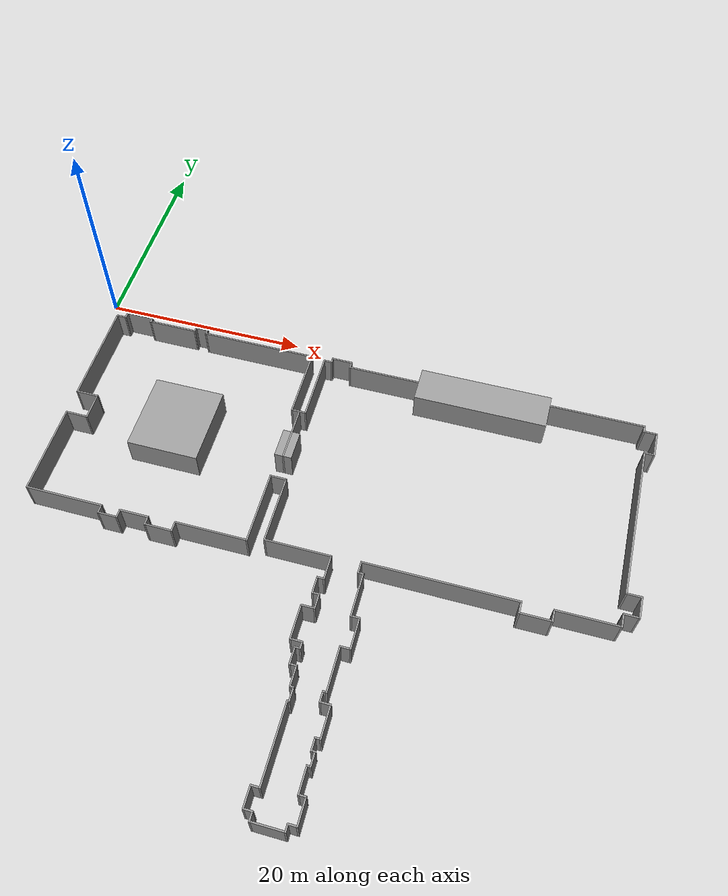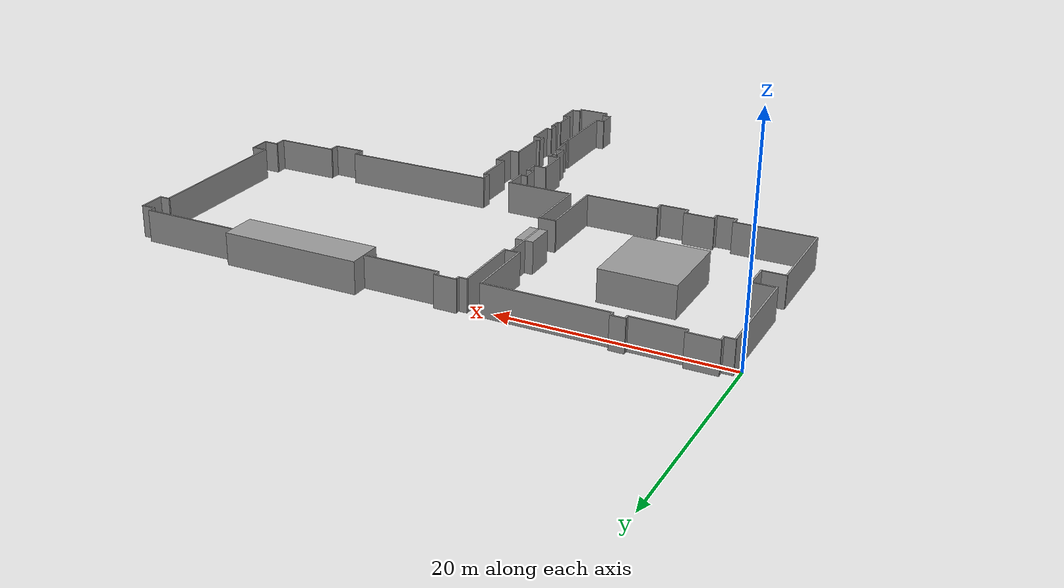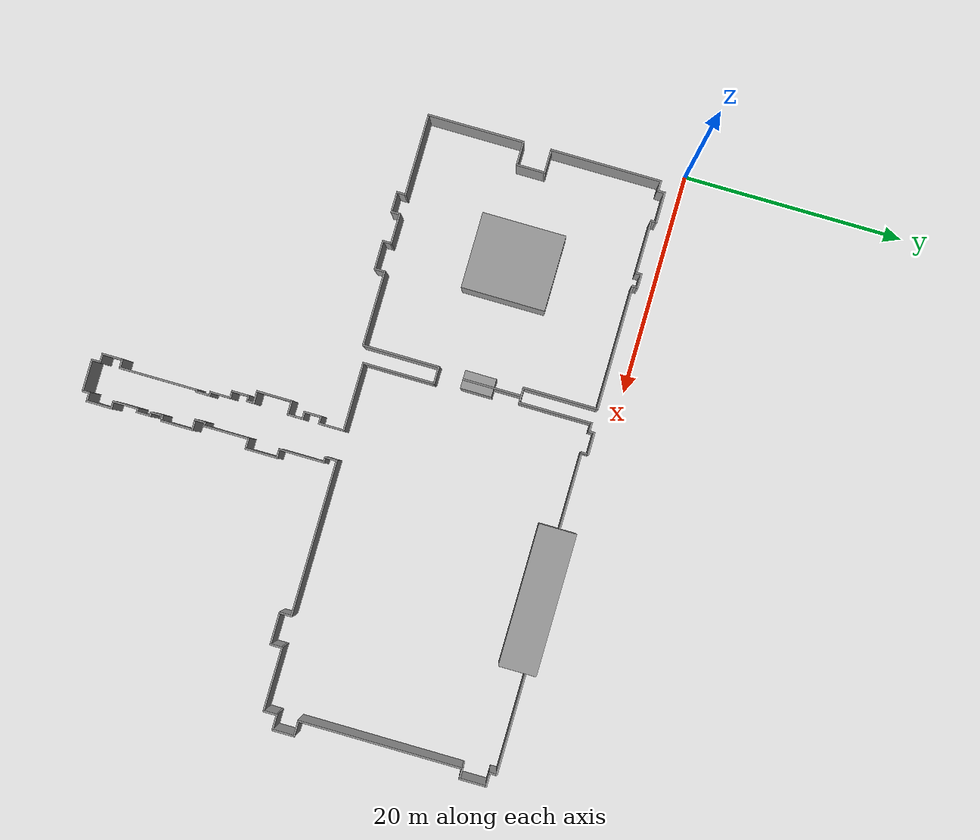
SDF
<sdf version="1.4">
 <model name="AbuDhabi">
  <static>1</static>
  <link name="Wall_0">
   <collision name="Wall_0_Collision">
    <geometry><box><size>12.90000 3.45000 3.00000</size></box></geometry>
    <pose>39.60000 -2.32500 0 0 0 0.00000</pose>
   </collision>
   <visual name="Wall_0_Visual">
    <geometry><box><size>12.90000 3.45000 3.00000</size></box></geometry>
    <material>
     <script><uri>file://media/materials/scripts/gazebo.material</uri><name>Gazebo/Grey</name></script>
    </material>
    <pose>39.60000 -2.32500 0 0 0 0.00000</pose>
   </visual>
  </link>
  <link name="Wall_1">
   <collision name="Wall_1_Collision">
    <geometry><box><size>2.85000 0.15000 3.00000</size></box></geometry>
    <pose>3.52500 -1.42500 0 0 0 0.00000</pose>
   </collision>
   <visual name="Wall_1_Visual">
    <geometry><box><size>2.85000 0.15000 3.00000</size></box></geometry>
    <material>
     <script><uri>file://media/materials/scripts/gazebo.material</uri><name>Gazebo/Grey</name></script>
    </material>
    <pose>3.52500 -1.42500 0 0 0 0.00000</pose>
   </visual>
  </link>
  <link name="Wall_2">
   <collision name="Wall_2_Collision">
    <geometry><box><size>1.35000 0.15000 3.00000</size></box></geometry>
    <pose>10.27500 -1.42500 0 0 0 0.00000</pose>
   </collision>
   <visual name="Wall_2_Visual">
    <geometry><box><size>1.35000 0.15000 3.00000</size></box></geometry>
    <material>
     <script><uri>file://media/materials/scripts/gazebo.material</uri><name>Gazebo/Grey</name></script>
    </material>
    <pose>10.27500 -1.42500 0 0 0 0.00000</pose>
   </visual>
  </link>
  <link name="Wall_3">
   <collision name="Wall_3_Collision">
    <geometry><box><size>0.15000 0.60000 3.00000</size></box></geometry>
    <pose>2.17500 -1.80000 0 0 0 0.00000</pose>
   </collision>
   <visual name="Wall_3_Visual">
    <geometry><box><size>0.15000 0.60000 3.00000</size></box></geometry>
    <material>
     <script><uri>file://media/materials/scripts/gazebo.material</uri><name>Gazebo/Grey</name></script>
    </material>
    <pose>2.17500 -1.80000 0 0 0 0.00000</pose>
   </visual>
  </link>
  <link name="Wall_4">
   <collision name="Wall_4_Collision">
    <geometry><box><size>0.15000 0.45000 3.00000</size></box></geometry>
    <pose>4.87500 -1.72500 0 0 0 0.00000</pose>
   </collision>
   <visual name="Wall_4_Visual">
    <geometry><box><size>0.15000 0.45000 3.00000</size></box></geometry>
    <material>
     <script><uri>file://media/materials/scripts/gazebo.material</uri><name>Gazebo/Grey</name></script>
    </material>
    <pose>4.87500 -1.72500 0 0 0 0.00000</pose>
   </visual>
  </link>
  <link name="Wall_5">
   <collision name="Wall_5_Collision">
    <geometry><box><size>0.15000 0.45000 3.00000</size></box></geometry>
    <pose>9.67500 -1.72500 0 0 0 0.00000</pose>
   </collision>
   <visual name="Wall_5_Visual">
    <geometry><box><size>0.15000 0.45000 3.00000</size></box></geometry>
    <material>
     <script><uri>file://media/materials/scripts/gazebo.material</uri><name>Gazebo/Grey</name></script>
    </material>
    <pose>9.67500 -1.72500 0 0 0 0.00000</pose>
   </visual>
  </link>
  <link name="Wall_6">
   <collision name="Wall_6_Collision">
    <geometry><box><size>0.15000 0.45000 3.00000</size></box></geometry>
    <pose>10.87500 -1.72500 0 0 0 0.00000</pose>
   </collision>
   <visual name="Wall_6_Visual">
    <geometry><box><size>0.15000 0.45000 3.00000</size></box></geometry>
    <material>
     <script><uri>file://media/materials/scripts/gazebo.material</uri><name>Gazebo/Grey</name></script>
    </material>
    <pose>10.87500 -1.72500 0 0 0 0.00000</pose>
   </visual>
  </link>
  <link name="Wall_7">
   <collision name="Wall_7_Collision">
    <geometry><box><size>2.10000 0.15000 3.00000</size></box></geometry>
    <pose>25.20000 -1.57500 0 0 0 0.00000</pose>
   </collision>
   <visual name="Wall_7_Visual">
    <geometry><box><size>2.10000 0.15000 3.00000</size></box></geometry>
    <material>
     <script><uri>file://media/materials/scripts/gazebo.material</uri><name>Gazebo/Grey</name></script>
    </material>
    <pose>25.20000 -1.57500 0 0 0 0.00000</pose>
   </visual>
  </link>
  <link name="Wall_8">
   <collision name="Wall_8_Collision">
    <geometry><box><size>9.15000 0.15000 3.00000</size></box></geometry>
    <pose>50.62500 -1.57500 0 0 0 0.00000</pose>
   </collision>
   <visual name="Wall_8_Visual">
    <geometry><box><size>9.15000 0.15000 3.00000</size></box></geometry>
    <material>
     <script><uri>file://media/materials/scripts/gazebo.material</uri><name>Gazebo/Grey</name></script>
    </material>
    <pose>50.62500 -1.57500 0 0 0 0.00000</pose>
   </visual>
  </link>
  <link name="Wall_9">
   <collision name="Wall_9_Collision">
    <geometry><box><size>0.15000 0.45000 3.00000</size></box></geometry>
    <pose>24.22500 -1.87500 0 0 0 0.00000</pose>
   </collision>
   <visual name="Wall_9_Visual">
    <geometry><box><size>0.15000 0.45000 3.00000</size></box></geometry>
    <material>
     <script><uri>file://media/materials/scripts/gazebo.material</uri><name>Gazebo/Grey</name></script>
    </material>
    <pose>24.22500 -1.87500 0 0 0 0.00000</pose>
   </visual>
  </link>
  <link name="Wall_10">
   <collision name="Wall_10_Collision">
    <geometry><box><size>0.15000 0.60000 3.00000</size></box></geometry>
    <pose>26.17500 -1.95000 0 0 0 0.00000</pose>
   </collision>
   <visual name="Wall_10_Visual">
    <geometry><box><size>0.15000 0.60000 3.00000</size></box></geometry>
    <material>
     <script><uri>file://media/materials/scripts/gazebo.material</uri><name>Gazebo/Grey</name></script>
    </material>
    <pose>26.17500 -1.95000 0 0 0 0.00000</pose>
   </visual>
  </link>
  <link name="Wall_11">
   <collision name="Wall_11_Collision">
    <geometry><box><size>0.15000 0.60000 3.00000</size></box></geometry>
    <pose>55.12500 -1.95000 0 0 0 0.00000</pose>
   </collision>
   <visual name="Wall_11_Visual">
    <geometry><box><size>0.15000 0.60000 3.00000</size></box></geometry>
    <material>
     <script><uri>file://media/materials/scripts/gazebo.material</uri><name>Gazebo/Grey</name></script>
    </material>
    <pose>55.12500 -1.95000 0 0 0 0.00000</pose>
   </visual>
  </link>
  <link name="Wall_12">
   <collision name="Wall_12_Collision">
    <geometry><box><size>4.65000 0.15000 3.00000</size></box></geometry>
    <pose>7.27500 -1.87500 0 0 0 0.00000</pose>
   </collision>
   <visual name="Wall_12_Visual">
    <geometry><box><size>4.65000 0.15000 3.00000</size></box></geometry>
    <material>
     <script><uri>file://media/materials/scripts/gazebo.material</uri><name>Gazebo/Grey</name></script>
    </material>
    <pose>7.27500 -1.87500 0 0 0 0.00000</pose>
   </visual>
  </link>
  <link name="Wall_13">
   <collision name="Wall_13_Collision">
    <geometry><box><size>11.25000 0.15000 3.00000</size></box></geometry>
    <pose>16.57500 -1.87500 0 0 0 0.00000</pose>
   </collision>
   <visual name="Wall_13_Visual">
    <geometry><box><size>11.25000 0.15000 3.00000</size></box></geometry>
    <material>
     <script><uri>file://media/materials/scripts/gazebo.material</uri><name>Gazebo/Grey</name></script>
    </material>
    <pose>16.57500 -1.87500 0 0 0 0.00000</pose>
   </visual>
  </link>
  <link name="Wall_14">
   <collision name="Wall_14_Collision">
    <geometry><box><size>0.90000 0.15000 3.00000</size></box></geometry>
    <pose>1.65000 -2.02500 0 0 0 0.00000</pose>
   </collision>
   <visual name="Wall_14_Visual">
    <geometry><box><size>0.90000 0.15000 3.00000</size></box></geometry>
    <material>
     <script><uri>file://media/materials/scripts/gazebo.material</uri><name>Gazebo/Grey</name></script>
    </material>
    <pose>1.65000 -2.02500 0 0 0 0.00000</pose>
   </visual>
  </link>
  <link name="Wall_15">
   <collision name="Wall_15_Collision">
    <geometry><box><size>0.15000 6.75000 3.00000</size></box></geometry>
    <pose>22.12500 -5.32500 0 0 0 0.00000</pose>
   </collision>
   <visual name="Wall_15_Visual">
    <geometry><box><size>0.15000 6.75000 3.00000</size></box></geometry>
    <material>
     <script><uri>file://media/materials/scripts/gazebo.material</uri><name>Gazebo/Grey</name></script>
    </material>
    <pose>22.12500 -5.32500 0 0 0 0.00000</pose>
   </visual>
  </link>
  <link name="Wall_16">
   <collision name="Wall_16_Collision">
    <geometry><box><size>0.75000 0.15000 3.00000</size></box></geometry>
    <pose>23.77500 -2.02500 0 0 0 0.00000</pose>
   </collision>
   <visual name="Wall_16_Visual">
    <geometry><box><size>0.75000 0.15000 3.00000</size></box></geometry>
    <material>
     <script><uri>file://media/materials/scripts/gazebo.material</uri><name>Gazebo/Grey</name></script>
    </material>
    <pose>23.77500 -2.02500 0 0 0 0.00000</pose>
   </visual>
  </link>
  <link name="Wall_17">
   <collision name="Wall_17_Collision">
    <geometry><box><size>0.15000 10.05000 3.00000</size></box></geometry>
    <pose>1.27500 -7.12500 0 0 0 0.00000</pose>
   </collision>
   <visual name="Wall_17_Visual">
    <geometry><box><size>0.15000 10.05000 3.00000</size></box></geometry>
    <material>
     <script><uri>file://media/materials/scripts/gazebo.material</uri><name>Gazebo/Grey</name></script>
    </material>
    <pose>1.27500 -7.12500 0 0 0 0.00000</pose>
   </visual>
  </link>
  <link name="Wall_18">
   <collision name="Wall_18_Collision">
    <geometry><box><size>0.15000 6.60000 3.00000</size></box></geometry>
    <pose>23.47500 -5.40000 0 0 0 0.00000</pose>
   </collision>
   <visual name="Wall_18_Visual">
    <geometry><box><size>0.15000 6.60000 3.00000</size></box></geometry>
    <material>
     <script><uri>file://media/materials/scripts/gazebo.material</uri><name>Gazebo/Grey</name></script>
    </material>
    <pose>23.47500 -5.40000 0 0 0 0.00000</pose>
   </visual>
  </link>
  <link name="Wall_19">
   <collision name="Wall_19_Collision">
    <geometry><box><size>6.90000 0.15000 3.00000</size></box></geometry>
    <pose>29.70000 -2.17500 0 0 0 0.00000</pose>
   </collision>
   <visual name="Wall_19_Visual">
    <geometry><box><size>6.90000 0.15000 3.00000</size></box></geometry>
    <material>
     <script><uri>file://media/materials/scripts/gazebo.material</uri><name>Gazebo/Grey</name></script>
    </material>
    <pose>29.70000 -2.17500 0 0 0 0.00000</pose>
   </visual>
  </link>
  <link name="Wall_20">
   <collision name="Wall_20_Collision">
    <geometry><box><size>1.20000 0.15000 3.00000</size></box></geometry>
    <pose>55.80000 -2.17500 0 0 0 0.00000</pose>
   </collision>
   <visual name="Wall_20_Visual">
    <geometry><box><size>1.20000 0.15000 3.00000</size></box></geometry>
    <material>
     <script><uri>file://media/materials/scripts/gazebo.material</uri><name>Gazebo/Grey</name></script>
    </material>
    <pose>55.80000 -2.17500 0 0 0 0.00000</pose>
   </visual>
  </link>
  <link name="Wall_21">
   <collision name="Wall_21_Collision">
    <geometry><box><size>0.15000 2.40000 3.00000</size></box></geometry>
    <pose>56.32500 -3.45000 0 0 0 0.00000</pose>
   </collision>
   <visual name="Wall_21_Visual">
    <geometry><box><size>0.15000 2.40000 3.00000</size></box></geometry>
    <material>
     <script><uri>file://media/materials/scripts/gazebo.material</uri><name>Gazebo/Grey</name></script>
    </material>
    <pose>56.32500 -3.45000 0 0 0 0.00000</pose>
   </visual>
  </link>
  <link name="Wall_22">
   <collision name="Wall_22_Collision">
    <geometry><box><size>0.90000 0.15000 3.00000</size></box></geometry>
    <pose>55.80000 -4.57500 0 0 0 0.00000</pose>
   </collision>
   <visual name="Wall_22_Visual">
    <geometry><box><size>0.90000 0.15000 3.00000</size></box></geometry>
    <material>
     <script><uri>file://media/materials/scripts/gazebo.material</uri><name>Gazebo/Grey</name></script>
    </material>
    <pose>55.80000 -4.57500 0 0 0 0.00000</pose>
   </visual>
  </link>
  <link name="Wall_23">
   <collision name="Wall_23_Collision">
    <geometry><box><size>0.15000 14.85000 3.00000</size></box></geometry>
    <pose>55.42500 -12.07500 0 0 0 0.00000</pose>
   </collision>
   <visual name="Wall_23_Visual">
    <geometry><box><size>0.15000 14.85000 3.00000</size></box></geometry>
    <material>
     <script><uri>file://media/materials/scripts/gazebo.material</uri><name>Gazebo/Grey</name></script>
    </material>
    <pose>55.42500 -12.07500 0 0 0 0.00000</pose>
   </visual>
  </link>
  <link name="Wall_24">
   <collision name="Wall_24_Collision">
    <geometry><box><size>1.20000 0.15000 3.00000</size></box></geometry>
    <pose>22.80000 -8.62500 0 0 0 0.00000</pose>
   </collision>
   <visual name="Wall_24_Visual">
    <geometry><box><size>1.20000 0.15000 3.00000</size></box></geometry>
    <material>
     <script><uri>file://media/materials/scripts/gazebo.material</uri><name>Gazebo/Grey</name></script>
    </material>
    <pose>22.80000 -8.62500 0 0 0 0.00000</pose>
   </visual>
  </link>
  <link name="Wall_25">
   <collision name="Wall_25_Collision">
    <geometry><box><size>6.90000 7.65000 3.00000</size></box></geometry>
    <pose>11.70000 -12.52500 0 0 0 0.00000</pose>
   </collision>
   <visual name="Wall_25_Visual">
    <geometry><box><size>6.90000 7.65000 3.00000</size></box></geometry>
    <material>
     <script><uri>file://media/materials/scripts/gazebo.material</uri><name>Gazebo/Grey</name></script>
    </material>
    <pose>11.70000 -12.52500 0 0 0 0.00000</pose>
   </visual>
  </link>
  <link name="Wall_26">
   <collision name="Wall_26_Collision">
    <geometry><box><size>0.15000 5.25000 3.00000</size></box></geometry>
    <pose>22.87500 -11.32500 0 0 0 0.00000</pose>
   </collision>
   <visual name="Wall_26_Visual">
    <geometry><box><size>0.15000 5.25000 3.00000</size></box></geometry>
    <material>
     <script><uri>file://media/materials/scripts/gazebo.material</uri><name>Gazebo/Grey</name></script>
    </material>
    <pose>22.87500 -11.32500 0 0 0 0.00000</pose>
   </visual>
  </link>
  <link name="Wall_27">
   <collision name="Wall_27_Collision">
    <geometry><box><size>0.75000 2.85000 3.00000</size></box></geometry>
    <pose>22.42500 -12.52500 0 0 0 0.00000</pose>
   </collision>
   <visual name="Wall_27_Visual">
    <geometry><box><size>0.75000 2.85000 3.00000</size></box></geometry>
    <material>
     <script><uri>file://media/materials/scripts/gazebo.material</uri><name>Gazebo/Grey</name></script>
    </material>
    <pose>22.42500 -12.52500 0 0 0 0.00000</pose>
   </visual>
  </link>
  <link name="Wall_28">
   <collision name="Wall_28_Collision">
    <geometry><box><size>0.75000 2.85000 3.00000</size></box></geometry>
    <pose>23.32500 -12.52500 0 0 0 0.00000</pose>
   </collision>
   <visual name="Wall_28_Visual">
    <geometry><box><size>0.75000 2.85000 3.00000</size></box></geometry>
    <material>
     <script><uri>file://media/materials/scripts/gazebo.material</uri><name>Gazebo/Grey</name></script>
    </material>
    <pose>23.32500 -12.52500 0 0 0 0.00000</pose>
   </visual>
  </link>
  <link name="Wall_29">
   <collision name="Wall_29_Collision">
    <geometry><box><size>2.10000 0.15000 3.00000</size></box></geometry>
    <pose>2.40000 -12.07500 0 0 0 0.00000</pose>
   </collision>
   <visual name="Wall_29_Visual">
    <geometry><box><size>2.10000 0.15000 3.00000</size></box></geometry>
    <material>
     <script><uri>file://media/materials/scripts/gazebo.material</uri><name>Gazebo/Grey</name></script>
    </material>
    <pose>2.40000 -12.07500 0 0 0 0.00000</pose>
   </visual>
  </link>
  <link name="Wall_30">
   <collision name="Wall_30_Collision">
    <geometry><box><size>0.15000 2.55000 3.00000</size></box></geometry>
    <pose>3.37500 -13.42500 0 0 0 0.00000</pose>
   </collision>
   <visual name="Wall_30_Visual">
    <geometry><box><size>0.15000 2.55000 3.00000</size></box></geometry>
    <material>
     <script><uri>file://media/materials/scripts/gazebo.material</uri><name>Gazebo/Grey</name></script>
    </material>
    <pose>3.37500 -13.42500 0 0 0 0.00000</pose>
   </visual>
  </link>
  <link name="Wall_31">
   <collision name="Wall_31_Collision">
    <geometry><box><size>2.10000 0.15000 3.00000</size></box></geometry>
    <pose>2.25000 -14.62500 0 0 0 0.00000</pose>
   </collision>
   <visual name="Wall_31_Visual">
    <geometry><box><size>2.10000 0.15000 3.00000</size></box></geometry>
    <material>
     <script><uri>file://media/materials/scripts/gazebo.material</uri><name>Gazebo/Grey</name></script>
    </material>
    <pose>2.25000 -14.62500 0 0 0 0.00000</pose>
   </visual>
  </link>
  <link name="Wall_32">
   <collision name="Wall_32_Collision">
    <geometry><box><size>0.15000 8.70000 3.00000</size></box></geometry>
    <pose>1.27500 -19.05000 0 0 0 0.00000</pose>
   </collision>
   <visual name="Wall_32_Visual">
    <geometry><box><size>0.15000 8.70000 3.00000</size></box></geometry>
    <material>
     <script><uri>file://media/materials/scripts/gazebo.material</uri><name>Gazebo/Grey</name></script>
    </material>
    <pose>1.27500 -19.05000 0 0 0 0.00000</pose>
   </visual>
  </link>
  <link name="Wall_33">
   <collision name="Wall_33_Collision">
    <geometry><box><size>1.65000 0.15000 3.00000</size></box></geometry>
    <pose>23.17500 -16.27500 0 0 0 0.00000</pose>
   </collision>
   <visual name="Wall_33_Visual">
    <geometry><box><size>1.65000 0.15000 3.00000</size></box></geometry>
    <material>
     <script><uri>file://media/materials/scripts/gazebo.material</uri><name>Gazebo/Grey</name></script>
    </material>
    <pose>23.17500 -16.27500 0 0 0 0.00000</pose>
   </visual>
  </link>
  <link name="Wall_34">
   <collision name="Wall_34_Collision">
    <geometry><box><size>0.15000 6.90000 3.00000</size></box></geometry>
    <pose>22.42500 -19.80000 0 0 0 0.00000</pose>
   </collision>
   <visual name="Wall_34_Visual">
    <geometry><box><size>0.15000 6.90000 3.00000</size></box></geometry>
    <material>
     <script><uri>file://media/materials/scripts/gazebo.material</uri><name>Gazebo/Grey</name></script>
    </material>
    <pose>22.42500 -19.80000 0 0 0 0.00000</pose>
   </visual>
  </link>
  <link name="Wall_35">
   <collision name="Wall_35_Collision">
    <geometry><box><size>0.15000 6.45000 3.00000</size></box></geometry>
    <pose>23.92500 -19.57500 0 0 0 0.00000</pose>
   </collision>
   <visual name="Wall_35_Visual">
    <geometry><box><size>0.15000 6.45000 3.00000</size></box></geometry>
    <material>
     <script><uri>file://media/materials/scripts/gazebo.material</uri><name>Gazebo/Grey</name></script>
    </material>
    <pose>23.92500 -19.57500 0 0 0 0.00000</pose>
   </visual>
  </link>
  <link name="Wall_36">
   <collision name="Wall_36_Collision">
    <geometry><box><size>1.35000 0.15000 3.00000</size></box></geometry>
    <pose>56.17500 -19.42500 0 0 0 0.00000</pose>
   </collision>
   <visual name="Wall_36_Visual">
    <geometry><box><size>1.35000 0.15000 3.00000</size></box></geometry>
    <material>
     <script><uri>file://media/materials/scripts/gazebo.material</uri><name>Gazebo/Grey</name></script>
    </material>
    <pose>56.17500 -19.42500 0 0 0 0.00000</pose>
   </visual>
  </link>
  <link name="Wall_37">
   <collision name="Wall_37_Collision">
    <geometry><box><size>0.15000 1.95000 3.00000</size></box></geometry>
    <pose>56.77500 -20.47500 0 0 0 0.00000</pose>
   </collision>
   <visual name="Wall_37_Visual">
    <geometry><box><size>0.15000 1.95000 3.00000</size></box></geometry>
    <material>
     <script><uri>file://media/materials/scripts/gazebo.material</uri><name>Gazebo/Grey</name></script>
    </material>
    <pose>56.77500 -20.47500 0 0 0 0.00000</pose>
   </visual>
  </link>
  <link name="Wall_38">
   <collision name="Wall_38_Collision">
    <geometry><box><size>1.35000 0.15000 3.00000</size></box></geometry>
    <pose>56.02500 -21.37500 0 0 0 0.00000</pose>
   </collision>
   <visual name="Wall_38_Visual">
    <geometry><box><size>1.35000 0.15000 3.00000</size></box></geometry>
    <material>
     <script><uri>file://media/materials/scripts/gazebo.material</uri><name>Gazebo/Grey</name></script>
    </material>
    <pose>56.02500 -21.37500 0 0 0 0.00000</pose>
   </visual>
  </link>
  <link name="Wall_39">
   <collision name="Wall_39_Collision">
    <geometry><box><size>0.15000 1.20000 3.00000</size></box></geometry>
    <pose>55.42500 -22.05000 0 0 0 0.00000</pose>
   </collision>
   <visual name="Wall_39_Visual">
    <geometry><box><size>0.15000 1.20000 3.00000</size></box></geometry>
    <material>
     <script><uri>file://media/materials/scripts/gazebo.material</uri><name>Gazebo/Grey</name></script>
    </material>
    <pose>55.42500 -22.05000 0 0 0 0.00000</pose>
   </visual>
  </link>
  <link name="Wall_40">
   <collision name="Wall_40_Collision">
    <geometry><box><size>14.25000 0.15000 3.00000</size></box></geometry>
    <pose>39.82500 -22.57500 0 0 0 0.00000</pose>
   </collision>
   <visual name="Wall_40_Visual">
    <geometry><box><size>14.25000 0.15000 3.00000</size></box></geometry>
    <material>
     <script><uri>file://media/materials/scripts/gazebo.material</uri><name>Gazebo/Grey</name></script>
    </material>
    <pose>39.82500 -22.57500 0 0 0 0.00000</pose>
   </visual>
  </link>
  <link name="Wall_41">
   <collision name="Wall_41_Collision">
    <geometry><box><size>5.70000 0.15000 3.00000</size></box></geometry>
    <pose>52.50000 -22.57500 0 0 0 0.00000</pose>
   </collision>
   <visual name="Wall_41_Visual">
    <geometry><box><size>5.70000 0.15000 3.00000</size></box></geometry>
    <material>
     <script><uri>file://media/materials/scripts/gazebo.material</uri><name>Gazebo/Grey</name></script>
    </material>
    <pose>52.50000 -22.57500 0 0 0 0.00000</pose>
   </visual>
  </link>
  <link name="Wall_42">
   <collision name="Wall_42_Collision">
    <geometry><box><size>6.15000 0.15000 3.00000</size></box></geometry>
    <pose>27.07500 -22.72500 0 0 0 0.00000</pose>
   </collision>
   <visual name="Wall_42_Visual">
    <geometry><box><size>6.15000 0.15000 3.00000</size></box></geometry>
    <material>
     <script><uri>file://media/materials/scripts/gazebo.material</uri><name>Gazebo/Grey</name></script>
    </material>
    <pose>27.07500 -22.72500 0 0 0 0.00000</pose>
   </visual>
  </link>
  <link name="Wall_43">
   <collision name="Wall_43_Collision">
    <geometry><box><size>0.15000 1.05000 3.00000</size></box></geometry>
    <pose>32.77500 -23.17500 0 0 0 0.00000</pose>
   </collision>
   <visual name="Wall_43_Visual">
    <geometry><box><size>0.15000 1.05000 3.00000</size></box></geometry>
    <material>
     <script><uri>file://media/materials/scripts/gazebo.material</uri><name>Gazebo/Grey</name></script>
    </material>
    <pose>32.77500 -23.17500 0 0 0 0.00000</pose>
   </visual>
  </link>
  <link name="Wall_44">
   <collision name="Wall_44_Collision">
    <geometry><box><size>0.15000 1.05000 3.00000</size></box></geometry>
    <pose>46.87500 -23.17500 0 0 0 0.00000</pose>
   </collision>
   <visual name="Wall_44_Visual">
    <geometry><box><size>0.15000 1.05000 3.00000</size></box></geometry>
    <material>
     <script><uri>file://media/materials/scripts/gazebo.material</uri><name>Gazebo/Grey</name></script>
    </material>
    <pose>46.87500 -23.17500 0 0 0 0.00000</pose>
   </visual>
  </link>
  <link name="Wall_45">
   <collision name="Wall_45_Collision">
    <geometry><box><size>0.15000 1.05000 3.00000</size></box></geometry>
    <pose>49.72500 -23.17500 0 0 0 0.00000</pose>
   </collision>
   <visual name="Wall_45_Visual">
    <geometry><box><size>0.15000 1.05000 3.00000</size></box></geometry>
    <material>
     <script><uri>file://media/materials/scripts/gazebo.material</uri><name>Gazebo/Grey</name></script>
    </material>
    <pose>49.72500 -23.17500 0 0 0 0.00000</pose>
   </visual>
  </link>
  <link name="Wall_46">
   <collision name="Wall_46_Collision">
    <geometry><box><size>0.15000 2.25000 3.00000</size></box></geometry>
    <pose>30.07500 -23.92500 0 0 0 0.00000</pose>
   </collision>
   <visual name="Wall_46_Visual">
    <geometry><box><size>0.15000 2.25000 3.00000</size></box></geometry>
    <material>
     <script><uri>file://media/materials/scripts/gazebo.material</uri><name>Gazebo/Grey</name></script>
    </material>
    <pose>30.07500 -23.92500 0 0 0 0.00000</pose>
   </visual>
  </link>
  <link name="Wall_47">
   <collision name="Wall_47_Collision">
    <geometry><box><size>6.75000 0.15000 3.00000</size></box></geometry>
    <pose>18.97500 -23.17500 0 0 0 0.00000</pose>
   </collision>
   <visual name="Wall_47_Visual">
    <geometry><box><size>6.75000 0.15000 3.00000</size></box></geometry>
    <material>
     <script><uri>file://media/materials/scripts/gazebo.material</uri><name>Gazebo/Grey</name></script>
    </material>
    <pose>18.97500 -23.17500 0 0 0 0.00000</pose>
   </visual>
  </link>
  <link name="Wall_48">
   <collision name="Wall_48_Collision">
    <geometry><box><size>7.35000 0.15000 3.00000</size></box></geometry>
    <pose>5.02500 -23.32500 0 0 0 0.00000</pose>
   </collision>
   <visual name="Wall_48_Visual">
    <geometry><box><size>7.35000 0.15000 3.00000</size></box></geometry>
    <material>
     <script><uri>file://media/materials/scripts/gazebo.material</uri><name>Gazebo/Grey</name></script>
    </material>
    <pose>5.02500 -23.32500 0 0 0 0.00000</pose>
   </visual>
  </link>
  <link name="Wall_49">
   <collision name="Wall_49_Collision">
    <geometry><box><size>2.85000 0.15000 3.00000</size></box></geometry>
    <pose>11.77500 -23.32500 0 0 0 0.00000</pose>
   </collision>
   <visual name="Wall_49_Visual">
    <geometry><box><size>2.85000 0.15000 3.00000</size></box></geometry>
    <material>
     <script><uri>file://media/materials/scripts/gazebo.material</uri><name>Gazebo/Grey</name></script>
    </material>
    <pose>11.77500 -23.32500 0 0 0 0.00000</pose>
   </visual>
  </link>
  <link name="Wall_50">
   <collision name="Wall_50_Collision">
    <geometry><box><size>0.15000 0.90000 3.00000</size></box></geometry>
    <pose>15.67500 -23.70000 0 0 0 0.00000</pose>
   </collision>
   <visual name="Wall_50_Visual">
    <geometry><box><size>0.15000 0.90000 3.00000</size></box></geometry>
    <material>
     <script><uri>file://media/materials/scripts/gazebo.material</uri><name>Gazebo/Grey</name></script>
    </material>
    <pose>15.67500 -23.70000 0 0 0 0.00000</pose>
   </visual>
  </link>
  <link name="Wall_51">
   <collision name="Wall_51_Collision">
    <geometry><box><size>0.15000 0.75000 3.00000</size></box></geometry>
    <pose>8.62500 -23.77500 0 0 0 0.00000</pose>
   </collision>
   <visual name="Wall_51_Visual">
    <geometry><box><size>0.15000 0.75000 3.00000</size></box></geometry>
    <material>
     <script><uri>file://media/materials/scripts/gazebo.material</uri><name>Gazebo/Grey</name></script>
    </material>
    <pose>8.62500 -23.77500 0 0 0 0.00000</pose>
   </visual>
  </link>
  <link name="Wall_52">
   <collision name="Wall_52_Collision">
    <geometry><box><size>0.15000 0.75000 3.00000</size></box></geometry>
    <pose>10.42500 -23.77500 0 0 0 0.00000</pose>
   </collision>
   <visual name="Wall_52_Visual">
    <geometry><box><size>0.15000 0.75000 3.00000</size></box></geometry>
    <material>
     <script><uri>file://media/materials/scripts/gazebo.material</uri><name>Gazebo/Grey</name></script>
    </material>
    <pose>10.42500 -23.77500 0 0 0 0.00000</pose>
   </visual>
  </link>
  <link name="Wall_53">
   <collision name="Wall_53_Collision">
    <geometry><box><size>0.15000 0.75000 3.00000</size></box></geometry>
    <pose>13.12500 -23.77500 0 0 0 0.00000</pose>
   </collision>
   <visual name="Wall_53_Visual">
    <geometry><box><size>0.15000 0.75000 3.00000</size></box></geometry>
    <material>
     <script><uri>file://media/materials/scripts/gazebo.material</uri><name>Gazebo/Grey</name></script>
    </material>
    <pose>13.12500 -23.77500 0 0 0 0.00000</pose>
   </visual>
  </link>
  <link name="Wall_54">
   <collision name="Wall_54_Collision">
    <geometry><box><size>0.45000 0.15000 3.00000</size></box></geometry>
    <pose>33.07500 -23.62500 0 0 0 0.00000</pose>
   </collision>
   <visual name="Wall_54_Visual">
    <geometry><box><size>0.45000 0.15000 3.00000</size></box></geometry>
    <material>
     <script><uri>file://media/materials/scripts/gazebo.material</uri><name>Gazebo/Grey</name></script>
    </material>
    <pose>33.07500 -23.62500 0 0 0 0.00000</pose>
   </visual>
  </link>
  <link name="Wall_55">
   <collision name="Wall_55_Collision">
    <geometry><box><size>2.70000 0.15000 3.00000</size></box></geometry>
    <pose>48.30000 -23.62500 0 0 0 0.00000</pose>
   </collision>
   <visual name="Wall_55_Visual">
    <geometry><box><size>2.70000 0.15000 3.00000</size></box></geometry>
    <material>
     <script><uri>file://media/materials/scripts/gazebo.material</uri><name>Gazebo/Grey</name></script>
    </material>
    <pose>48.30000 -23.62500 0 0 0 0.00000</pose>
   </visual>
  </link>
  <link name="Wall_56">
   <collision name="Wall_56_Collision">
    <geometry><box><size>0.15000 4.05000 3.00000</size></box></geometry>
    <pose>33.22500 -25.72500 0 0 0 0.00000</pose>
   </collision>
   <visual name="Wall_56_Visual">
    <geometry><box><size>0.15000 4.05000 3.00000</size></box></geometry>
    <material>
     <script><uri>file://media/materials/scripts/gazebo.material</uri><name>Gazebo/Grey</name></script>
    </material>
    <pose>33.22500 -25.72500 0 0 0 0.00000</pose>
   </visual>
  </link>
  <link name="Wall_57">
   <collision name="Wall_57_Collision">
    <geometry><box><size>1.65000 0.15000 3.00000</size></box></geometry>
    <pose>9.52500 -24.07500 0 0 0 0.00000</pose>
   </collision>
   <visual name="Wall_57_Visual">
    <geometry><box><size>1.65000 0.15000 3.00000</size></box></geometry>
    <material>
     <script><uri>file://media/materials/scripts/gazebo.material</uri><name>Gazebo/Grey</name></script>
    </material>
    <pose>9.52500 -24.07500 0 0 0 0.00000</pose>
   </visual>
  </link>
  <link name="Wall_58">
   <collision name="Wall_58_Collision">
    <geometry><box><size>2.40000 0.15000 3.00000</size></box></geometry>
    <pose>14.40000 -24.07500 0 0 0 0.00000</pose>
   </collision>
   <visual name="Wall_58_Visual">
    <geometry><box><size>2.40000 0.15000 3.00000</size></box></geometry>
    <material>
     <script><uri>file://media/materials/scripts/gazebo.material</uri><name>Gazebo/Grey</name></script>
    </material>
    <pose>14.40000 -24.07500 0 0 0 0.00000</pose>
   </visual>
  </link>
  <link name="Wall_59">
   <collision name="Wall_59_Collision">
    <geometry><box><size>0.60000 0.15000 3.00000</size></box></geometry>
    <pose>29.70000 -24.97500 0 0 0 0.00000</pose>
   </collision>
   <visual name="Wall_59_Visual">
    <geometry><box><size>0.60000 0.15000 3.00000</size></box></geometry>
    <material>
     <script><uri>file://media/materials/scripts/gazebo.material</uri><name>Gazebo/Grey</name></script>
    </material>
    <pose>29.70000 -24.97500 0 0 0 0.00000</pose>
   </visual>
  </link>
  <link name="Wall_60">
   <collision name="Wall_60_Collision">
    <geometry><box><size>0.15000 1.50000 3.00000</size></box></geometry>
    <pose>29.47500 -25.80000 0 0 0 0.00000</pose>
   </collision>
   <visual name="Wall_60_Visual">
    <geometry><box><size>0.15000 1.50000 3.00000</size></box></geometry>
    <material>
     <script><uri>file://media/materials/scripts/gazebo.material</uri><name>Gazebo/Grey</name></script>
    </material>
    <pose>29.47500 -25.80000 0 0 0 0.00000</pose>
   </visual>
  </link>
  <link name="Wall_61">
   <collision name="Wall_61_Collision">
    <geometry><box><size>0.60000 0.15000 3.00000</size></box></geometry>
    <pose>29.85000 -26.47500 0 0 0 0.00000</pose>
   </collision>
   <visual name="Wall_61_Visual">
    <geometry><box><size>0.60000 0.15000 3.00000</size></box></geometry>
    <material>
     <script><uri>file://media/materials/scripts/gazebo.material</uri><name>Gazebo/Grey</name></script>
    </material>
    <pose>29.85000 -26.47500 0 0 0 0.00000</pose>
   </visual>
  </link>
  <link name="Wall_62">
   <collision name="Wall_62_Collision">
    <geometry><box><size>0.15000 1.35000 3.00000</size></box></geometry>
    <pose>30.07500 -27.22500 0 0 0 0.00000</pose>
   </collision>
   <visual name="Wall_62_Visual">
    <geometry><box><size>0.15000 1.35000 3.00000</size></box></geometry>
    <material>
     <script><uri>file://media/materials/scripts/gazebo.material</uri><name>Gazebo/Grey</name></script>
    </material>
    <pose>30.07500 -27.22500 0 0 0 0.00000</pose>
   </visual>
  </link>
  <link name="Wall_63">
   <collision name="Wall_63_Collision">
    <geometry><box><size>0.75000 0.15000 3.00000</size></box></geometry>
    <pose>33.67500 -27.67500 0 0 0 0.00000</pose>
   </collision>
   <visual name="Wall_63_Visual">
    <geometry><box><size>0.75000 0.15000 3.00000</size></box></geometry>
    <material>
     <script><uri>file://media/materials/scripts/gazebo.material</uri><name>Gazebo/Grey</name></script>
    </material>
    <pose>33.67500 -27.67500 0 0 0 0.00000</pose>
   </visual>
  </link>
  <link name="Wall_64">
   <collision name="Wall_64_Collision">
    <geometry><box><size>1.20000 0.15000 3.00000</size></box></geometry>
    <pose>29.40000 -27.82500 0 0 0 0.00000</pose>
   </collision>
   <visual name="Wall_64_Visual">
    <geometry><box><size>1.20000 0.15000 3.00000</size></box></geometry>
    <material>
     <script><uri>file://media/materials/scripts/gazebo.material</uri><name>Gazebo/Grey</name></script>
    </material>
    <pose>29.40000 -27.82500 0 0 0 0.00000</pose>
   </visual>
  </link>
  <link name="Wall_65">
   <collision name="Wall_65_Collision">
    <geometry><box><size>0.15000 2.85000 3.00000</size></box></geometry>
    <pose>33.97500 -29.17500 0 0 0 0.00000</pose>
   </collision>
   <visual name="Wall_65_Visual">
    <geometry><box><size>0.15000 2.85000 3.00000</size></box></geometry>
    <material>
     <script><uri>file://media/materials/scripts/gazebo.material</uri><name>Gazebo/Grey</name></script>
    </material>
    <pose>33.97500 -29.17500 0 0 0 0.00000</pose>
   </visual>
  </link>
  <link name="Wall_66">
   <collision name="Wall_66_Collision">
    <geometry><box><size>0.15000 3.15000 3.00000</size></box></geometry>
    <pose>28.87500 -29.47500 0 0 0 0.00000</pose>
   </collision>
   <visual name="Wall_66_Visual">
    <geometry><box><size>0.15000 3.15000 3.00000</size></box></geometry>
    <material>
     <script><uri>file://media/materials/scripts/gazebo.material</uri><name>Gazebo/Grey</name></script>
    </material>
    <pose>28.87500 -29.47500 0 0 0 0.00000</pose>
   </visual>
  </link>
  <link name="Wall_67">
   <collision name="Wall_67_Collision">
    <geometry><box><size>0.90000 0.15000 3.00000</size></box></geometry>
    <pose>33.45000 -30.52500 0 0 0 0.00000</pose>
   </collision>
   <visual name="Wall_67_Visual">
    <geometry><box><size>0.90000 0.15000 3.00000</size></box></geometry>
    <material>
     <script><uri>file://media/materials/scripts/gazebo.material</uri><name>Gazebo/Grey</name></script>
    </material>
    <pose>33.45000 -30.52500 0 0 0 0.00000</pose>
   </visual>
  </link>
  <link name="Wall_68">
   <collision name="Wall_68_Collision">
    <geometry><box><size>0.15000 4.05000 3.00000</size></box></geometry>
    <pose>33.07500 -32.62500 0 0 0 0.00000</pose>
   </collision>
   <visual name="Wall_68_Visual">
    <geometry><box><size>0.15000 4.05000 3.00000</size></box></geometry>
    <material>
     <script><uri>file://media/materials/scripts/gazebo.material</uri><name>Gazebo/Grey</name></script>
    </material>
    <pose>33.07500 -32.62500 0 0 0 0.00000</pose>
   </visual>
  </link>
  <link name="Wall_69">
   <collision name="Wall_69_Collision">
    <geometry><box><size>1.05000 0.15000 3.00000</size></box></geometry>
    <pose>29.47500 -30.97500 0 0 0 0.00000</pose>
   </collision>
   <visual name="Wall_69_Visual">
    <geometry><box><size>1.05000 0.15000 3.00000</size></box></geometry>
    <material>
     <script><uri>file://media/materials/scripts/gazebo.material</uri><name>Gazebo/Grey</name></script>
    </material>
    <pose>29.47500 -30.97500 0 0 0 0.00000</pose>
   </visual>
  </link>
  <link name="Wall_70">
   <collision name="Wall_70_Collision">
    <geometry><box><size>0.15000 0.60000 3.00000</size></box></geometry>
    <pose>29.92500 -31.35000 0 0 0 0.00000</pose>
   </collision>
   <visual name="Wall_70_Visual">
    <geometry><box><size>0.15000 0.60000 3.00000</size></box></geometry>
    <material>
     <script><uri>file://media/materials/scripts/gazebo.material</uri><name>Gazebo/Grey</name></script>
    </material>
    <pose>29.92500 -31.35000 0 0 0 0.00000</pose>
   </visual>
  </link>
  <link name="Wall_71">
   <collision name="Wall_71_Collision">
    <geometry><box><size>0.45000 0.15000 3.00000</size></box></geometry>
    <pose>29.62500 -31.57500 0 0 0 0.00000</pose>
   </collision>
   <visual name="Wall_71_Visual">
    <geometry><box><size>0.45000 0.15000 3.00000</size></box></geometry>
    <material>
     <script><uri>file://media/materials/scripts/gazebo.material</uri><name>Gazebo/Grey</name></script>
    </material>
    <pose>29.62500 -31.57500 0 0 0 0.00000</pose>
   </visual>
  </link>
  <link name="Wall_72">
   <collision name="Wall_72_Collision">
    <geometry><box><size>0.15000 1.50000 3.00000</size></box></geometry>
    <pose>29.47500 -32.40000 0 0 0 0.00000</pose>
   </collision>
   <visual name="Wall_72_Visual">
    <geometry><box><size>0.15000 1.50000 3.00000</size></box></geometry>
    <material>
     <script><uri>file://media/materials/scripts/gazebo.material</uri><name>Gazebo/Grey</name></script>
    </material>
    <pose>29.47500 -32.40000 0 0 0 0.00000</pose>
   </visual>
  </link>
  <link name="Wall_73">
   <collision name="Wall_73_Collision">
    <geometry><box><size>0.60000 0.15000 3.00000</size></box></geometry>
    <pose>29.85000 -33.07500 0 0 0 0.00000</pose>
   </collision>
   <visual name="Wall_73_Visual">
    <geometry><box><size>0.60000 0.15000 3.00000</size></box></geometry>
    <material>
     <script><uri>file://media/materials/scripts/gazebo.material</uri><name>Gazebo/Grey</name></script>
    </material>
    <pose>29.85000 -33.07500 0 0 0 0.00000</pose>
   </visual>
  </link>
  <link name="Wall_74">
   <collision name="Wall_74_Collision">
    <geometry><box><size>0.15000 1.80000 3.00000</size></box></geometry>
    <pose>30.07500 -34.05000 0 0 0 0.00000</pose>
   </collision>
   <visual name="Wall_74_Visual">
    <geometry><box><size>0.15000 1.80000 3.00000</size></box></geometry>
    <material>
     <script><uri>file://media/materials/scripts/gazebo.material</uri><name>Gazebo/Grey</name></script>
    </material>
    <pose>30.07500 -34.05000 0 0 0 0.00000</pose>
   </visual>
  </link>
  <link name="Wall_75">
   <collision name="Wall_75_Collision">
    <geometry><box><size>0.30000 0.15000 3.00000</size></box></geometry>
    <pose>32.85000 -34.57500 0 0 0 0.00000</pose>
   </collision>
   <visual name="Wall_75_Visual">
    <geometry><box><size>0.30000 0.15000 3.00000</size></box></geometry>
    <material>
     <script><uri>file://media/materials/scripts/gazebo.material</uri><name>Gazebo/Grey</name></script>
    </material>
    <pose>32.85000 -34.57500 0 0 0 0.00000</pose>
   </visual>
  </link>
  <link name="Wall_76">
   <collision name="Wall_76_Collision">
    <geometry><box><size>0.15000 0.90000 3.00000</size></box></geometry>
    <pose>32.77500 -35.10000 0 0 0 0.00000</pose>
   </collision>
   <visual name="Wall_76_Visual">
    <geometry><box><size>0.15000 0.90000 3.00000</size></box></geometry>
    <material>
     <script><uri>file://media/materials/scripts/gazebo.material</uri><name>Gazebo/Grey</name></script>
    </material>
    <pose>32.77500 -35.10000 0 0 0 0.00000</pose>
   </visual>
  </link>
  <link name="Wall_77">
   <collision name="Wall_77_Collision">
    <geometry><box><size>0.30000 0.15000 3.00000</size></box></geometry>
    <pose>30.30000 -34.87500 0 0 0 0.00000</pose>
   </collision>
   <visual name="Wall_77_Visual">
    <geometry><box><size>0.30000 0.15000 3.00000</size></box></geometry>
    <material>
     <script><uri>file://media/materials/scripts/gazebo.material</uri><name>Gazebo/Grey</name></script>
    </material>
    <pose>30.30000 -34.87500 0 0 0 0.00000</pose>
   </visual>
  </link>
  <link name="Wall_78">
   <collision name="Wall_78_Collision">
    <geometry><box><size>0.15000 1.20000 3.00000</size></box></geometry>
    <pose>30.37500 -35.55000 0 0 0 0.00000</pose>
   </collision>
   <visual name="Wall_78_Visual">
    <geometry><box><size>0.15000 1.20000 3.00000</size></box></geometry>
    <material>
     <script><uri>file://media/materials/scripts/gazebo.material</uri><name>Gazebo/Grey</name></script>
    </material>
    <pose>30.37500 -35.55000 0 0 0 0.00000</pose>
   </visual>
  </link>
  <link name="Wall_79">
   <collision name="Wall_79_Collision">
    <geometry><box><size>0.90000 0.15000 3.00000</size></box></geometry>
    <pose>33.30000 -35.47500 0 0 0 0.00000</pose>
   </collision>
   <visual name="Wall_79_Visual">
    <geometry><box><size>0.90000 0.15000 3.00000</size></box></geometry>
    <material>
     <script><uri>file://media/materials/scripts/gazebo.material</uri><name>Gazebo/Grey</name></script>
    </material>
    <pose>33.30000 -35.47500 0 0 0 0.00000</pose>
   </visual>
  </link>
  <link name="Wall_80">
   <collision name="Wall_80_Collision">
    <geometry><box><size>0.15000 2.85000 3.00000</size></box></geometry>
    <pose>33.67500 -36.97500 0 0 0 0.00000</pose>
   </collision>
   <visual name="Wall_80_Visual">
    <geometry><box><size>0.15000 2.85000 3.00000</size></box></geometry>
    <material>
     <script><uri>file://media/materials/scripts/gazebo.material</uri><name>Gazebo/Grey</name></script>
    </material>
    <pose>33.67500 -36.97500 0 0 0 0.00000</pose>
   </visual>
  </link>
  <link name="Wall_81">
   <collision name="Wall_81_Collision">
    <geometry><box><size>0.15000 7.20000 3.00000</size></box></geometry>
    <pose>30.22500 -39.60000 0 0 0 0.00000</pose>
   </collision>
   <visual name="Wall_81_Visual">
    <geometry><box><size>0.15000 7.20000 3.00000</size></box></geometry>
    <material>
     <script><uri>file://media/materials/scripts/gazebo.material</uri><name>Gazebo/Grey</name></script>
    </material>
    <pose>30.22500 -39.60000 0 0 0 0.00000</pose>
   </visual>
  </link>
  <link name="Wall_82">
   <collision name="Wall_82_Collision">
    <geometry><box><size>0.45000 0.15000 3.00000</size></box></geometry>
    <pose>33.37500 -38.32500 0 0 0 0.00000</pose>
   </collision>
   <visual name="Wall_82_Visual">
    <geometry><box><size>0.45000 0.15000 3.00000</size></box></geometry>
    <material>
     <script><uri>file://media/materials/scripts/gazebo.material</uri><name>Gazebo/Grey</name></script>
    </material>
    <pose>33.37500 -38.32500 0 0 0 0.00000</pose>
   </visual>
  </link>
  <link name="Wall_83">
   <collision name="Wall_83_Collision">
    <geometry><box><size>0.15000 1.05000 3.00000</size></box></geometry>
    <pose>33.22500 -38.92500 0 0 0 0.00000</pose>
   </collision>
   <visual name="Wall_83_Visual">
    <geometry><box><size>0.15000 1.05000 3.00000</size></box></geometry>
    <material>
     <script><uri>file://media/materials/scripts/gazebo.material</uri><name>Gazebo/Grey</name></script>
    </material>
    <pose>33.22500 -38.92500 0 0 0 0.00000</pose>
   </visual>
  </link>
  <link name="Wall_84">
   <collision name="Wall_84_Collision">
    <geometry><box><size>0.30000 0.15000 3.00000</size></box></geometry>
    <pose>33.45000 -39.37500 0 0 0 0.00000</pose>
   </collision>
   <visual name="Wall_84_Visual">
    <geometry><box><size>0.30000 0.15000 3.00000</size></box></geometry>
    <material>
     <script><uri>file://media/materials/scripts/gazebo.material</uri><name>Gazebo/Grey</name></script>
    </material>
    <pose>33.45000 -39.37500 0 0 0 0.00000</pose>
   </visual>
  </link>
  <link name="Wall_85">
   <collision name="Wall_85_Collision">
    <geometry><box><size>0.15000 1.20000 3.00000</size></box></geometry>
    <pose>33.52500 -40.05000 0 0 0 0.00000</pose>
   </collision>
   <visual name="Wall_85_Visual">
    <geometry><box><size>0.15000 1.20000 3.00000</size></box></geometry>
    <material>
     <script><uri>file://media/materials/scripts/gazebo.material</uri><name>Gazebo/Grey</name></script>
    </material>
    <pose>33.52500 -40.05000 0 0 0 0.00000</pose>
   </visual>
  </link>
  <link name="Wall_86">
   <collision name="Wall_86_Collision">
    <geometry><box><size>0.30000 0.15000 3.00000</size></box></geometry>
    <pose>33.30000 -40.57500 0 0 0 0.00000</pose>
   </collision>
   <visual name="Wall_86_Visual">
    <geometry><box><size>0.30000 0.15000 3.00000</size></box></geometry>
    <material>
     <script><uri>file://media/materials/scripts/gazebo.material</uri><name>Gazebo/Grey</name></script>
    </material>
    <pose>33.30000 -40.57500 0 0 0 0.00000</pose>
   </visual>
  </link>
  <link name="Wall_87">
   <collision name="Wall_87_Collision">
    <geometry><box><size>0.15000 2.25000 3.00000</size></box></geometry>
    <pose>33.22500 -41.77500 0 0 0 0.00000</pose>
   </collision>
   <visual name="Wall_87_Visual">
    <geometry><box><size>0.15000 2.25000 3.00000</size></box></geometry>
    <material>
     <script><uri>file://media/materials/scripts/gazebo.material</uri><name>Gazebo/Grey</name></script>
    </material>
    <pose>33.22500 -41.77500 0 0 0 0.00000</pose>
   </visual>
  </link>
  <link name="Wall_88">
   <collision name="Wall_88_Collision">
    <geometry><box><size>0.60000 0.15000 3.00000</size></box></geometry>
    <pose>33.60000 -42.82500 0 0 0 0.00000</pose>
   </collision>
   <visual name="Wall_88_Visual">
    <geometry><box><size>0.60000 0.15000 3.00000</size></box></geometry>
    <material>
     <script><uri>file://media/materials/scripts/gazebo.material</uri><name>Gazebo/Grey</name></script>
    </material>
    <pose>33.60000 -42.82500 0 0 0 0.00000</pose>
   </visual>
  </link>
  <link name="Wall_89">
   <collision name="Wall_89_Collision">
    <geometry><box><size>0.15000 2.25000 3.00000</size></box></geometry>
    <pose>33.82500 -44.02500 0 0 0 0.00000</pose>
   </collision>
   <visual name="Wall_89_Visual">
    <geometry><box><size>0.15000 2.25000 3.00000</size></box></geometry>
    <material>
     <script><uri>file://media/materials/scripts/gazebo.material</uri><name>Gazebo/Grey</name></script>
    </material>
    <pose>33.82500 -44.02500 0 0 0 0.00000</pose>
   </visual>
  </link>
  <link name="Wall_90">
   <collision name="Wall_90_Collision">
    <geometry><box><size>0.75000 0.15000 3.00000</size></box></geometry>
    <pose>29.77500 -43.12500 0 0 0 0.00000</pose>
   </collision>
   <visual name="Wall_90_Visual">
    <geometry><box><size>0.75000 0.15000 3.00000</size></box></geometry>
    <material>
     <script><uri>file://media/materials/scripts/gazebo.material</uri><name>Gazebo/Grey</name></script>
    </material>
    <pose>29.77500 -43.12500 0 0 0 0.00000</pose>
   </visual>
  </link>
  <link name="Wall_91">
   <collision name="Wall_91_Collision">
    <geometry><box><size>0.15000 1.80000 3.00000</size></box></geometry>
    <pose>29.47500 -44.10000 0 0 0 0.00000</pose>
   </collision>
   <visual name="Wall_91_Visual">
    <geometry><box><size>0.15000 1.80000 3.00000</size></box></geometry>
    <material>
     <script><uri>file://media/materials/scripts/gazebo.material</uri><name>Gazebo/Grey</name></script>
    </material>
    <pose>29.47500 -44.10000 0 0 0 0.00000</pose>
   </visual>
  </link>
  <link name="Wall_92">
   <collision name="Wall_92_Collision">
    <geometry><box><size>0.75000 0.15000 3.00000</size></box></geometry>
    <pose>29.92500 -44.92500 0 0 0 0.00000</pose>
   </collision>
   <visual name="Wall_92_Visual">
    <geometry><box><size>0.75000 0.15000 3.00000</size></box></geometry>
    <material>
     <script><uri>file://media/materials/scripts/gazebo.material</uri><name>Gazebo/Grey</name></script>
    </material>
    <pose>29.92500 -44.92500 0 0 0 0.00000</pose>
   </visual>
  </link>
  <link name="Wall_93">
   <collision name="Wall_93_Collision">
    <geometry><box><size>0.15000 0.75000 3.00000</size></box></geometry>
    <pose>30.22500 -45.37500 0 0 0 0.00000</pose>
   </collision>
   <visual name="Wall_93_Visual">
    <geometry><box><size>0.15000 0.75000 3.00000</size></box></geometry>
    <material>
     <script><uri>file://media/materials/scripts/gazebo.material</uri><name>Gazebo/Grey</name></script>
    </material>
    <pose>30.22500 -45.37500 0 0 0 0.00000</pose>
   </visual>
  </link>
  <link name="Wall_94">
   <collision name="Wall_94_Collision">
    <geometry><box><size>0.75000 0.15000 3.00000</size></box></geometry>
    <pose>33.37500 -45.07500 0 0 0 0.00000</pose>
   </collision>
   <visual name="Wall_94_Visual">
    <geometry><box><size>0.75000 0.15000 3.00000</size></box></geometry>
    <material>
     <script><uri>file://media/materials/scripts/gazebo.material</uri><name>Gazebo/Grey</name></script>
    </material>
    <pose>33.37500 -45.07500 0 0 0 0.00000</pose>
   </visual>
  </link>
  <link name="Wall_95">
   <collision name="Wall_95_Collision">
    <geometry><box><size>0.15000 0.60000 3.00000</size></box></geometry>
    <pose>33.07500 -45.45000 0 0 0 0.00000</pose>
   </collision>
   <visual name="Wall_95_Visual">
    <geometry><box><size>0.15000 0.60000 3.00000</size></box></geometry>
    <material>
     <script><uri>file://media/materials/scripts/gazebo.material</uri><name>Gazebo/Grey</name></script>
    </material>
    <pose>33.07500 -45.45000 0 0 0 0.00000</pose>
   </visual>
  </link>
  <link name="Wall_96">
   <collision name="Wall_96_Collision">
    <geometry><box><size>2.70000 0.15000 3.00000</size></box></geometry>
    <pose>31.65000 -45.67500 0 0 0 0.00000</pose>
   </collision>
   <visual name="Wall_96_Visual">
    <geometry><box><size>2.70000 0.15000 3.00000</size></box></geometry>
    <material>
     <script><uri>file://media/materials/scripts/gazebo.material</uri><name>Gazebo/Grey</name></script>
    </material>
    <pose>31.65000 -45.67500 0 0 0 0.00000</pose>
   </visual>
  </link>
 </model>
</sdf>
